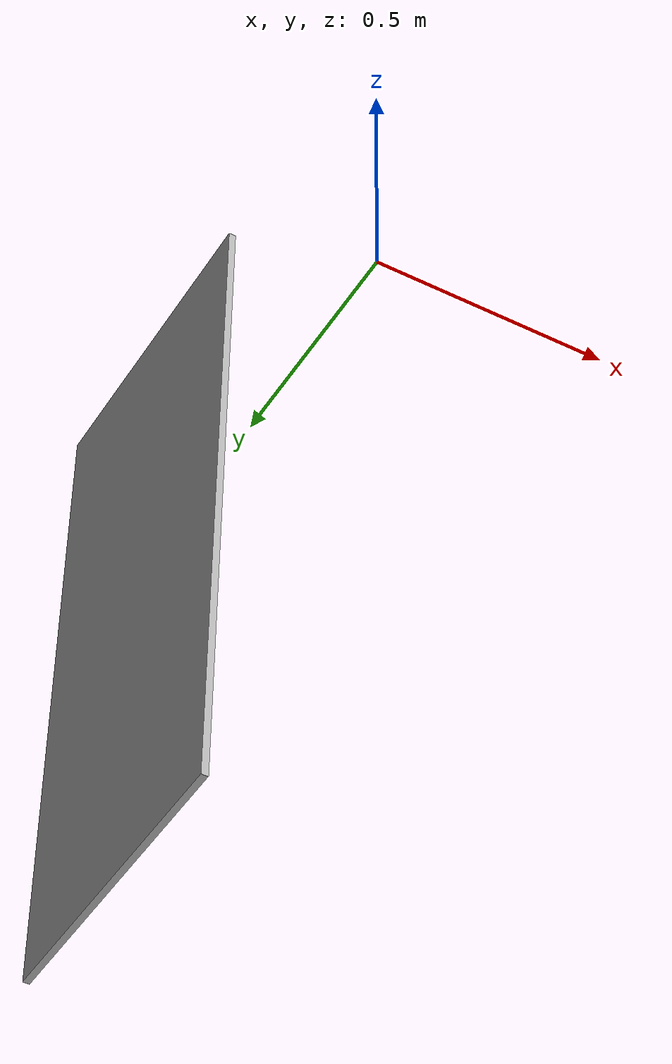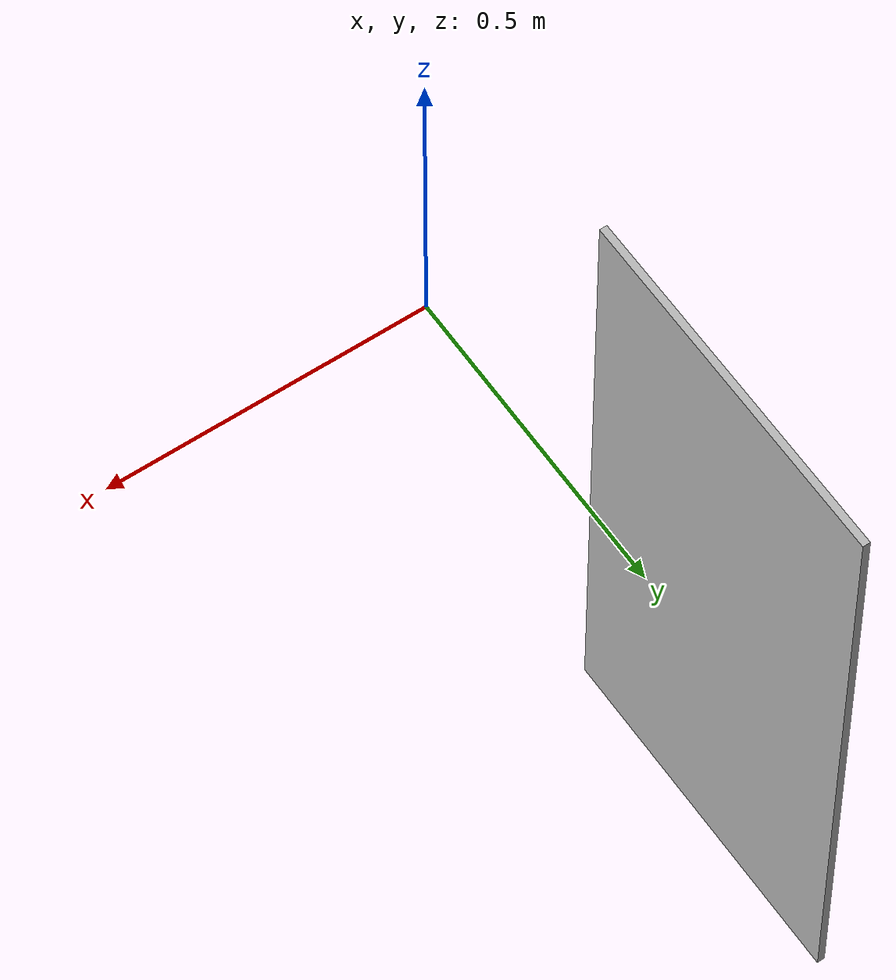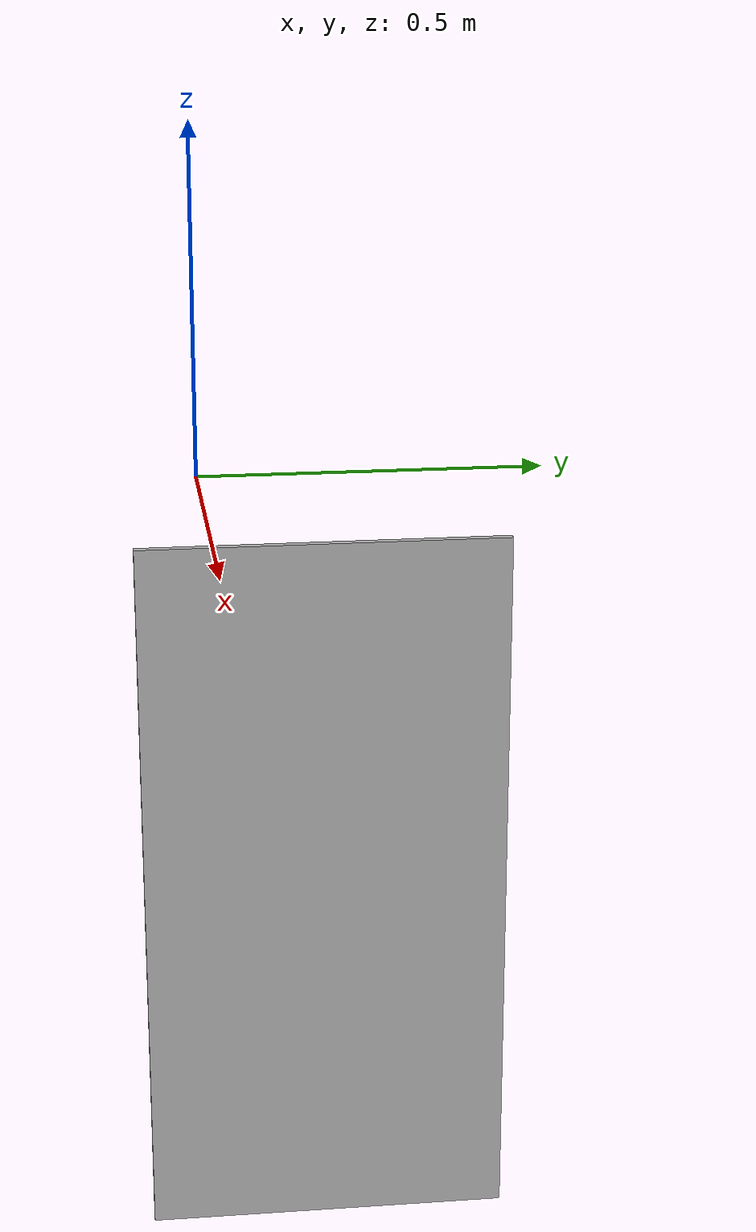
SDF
<?xml version='1.0'?>
  <sdf version="1.6">
  <model name="jiangshi">
    <pose>0 0 0.25 1.57 0 -1.57</pose>
    <link name="base_link">
        <inertial>
            <origin xyz="0 0 0" rpy="0 0 0" />
            <mass value="1" />
            <inertia ixx="1.0E-5"
                ixy="0"
                ixz="0"
                iyy="1.0E-5"
                iyz="0"
                izz="1.0E-5" />
        </inertial>
        <visual name="visual">
            <geometry>
                <mesh>
                    <uri>model://jiangshi/jiangshi.dae</uri>
                </mesh>
            </geometry>
            <material name="">
                <color rgba="0.79216 0.81961 0.93333 1" />
            </material>
        </visual>
        <collision name="collision">
            <geometry>
                <mesh>
                    <uri>model://jiangshi/jiangshi.dae</uri>
                </mesh>
            </geometry>
        </collision>
    </link>
</model>
</sdf>
